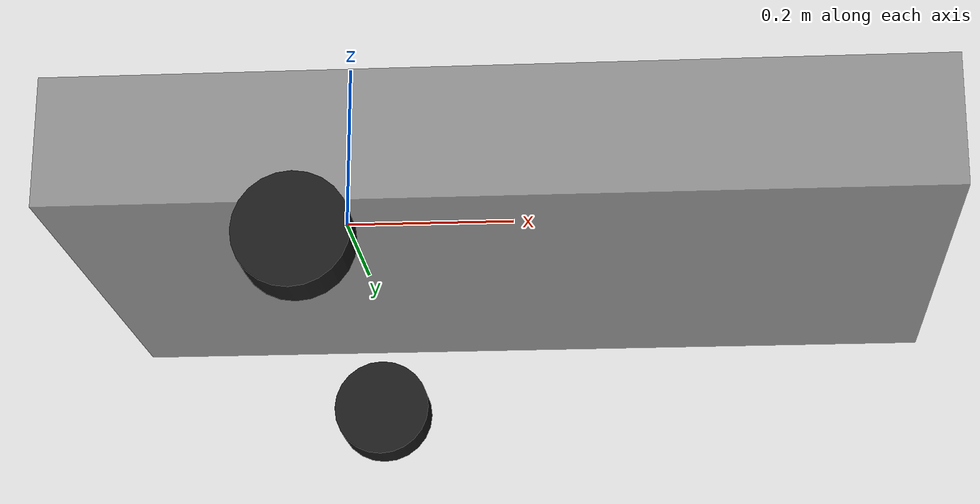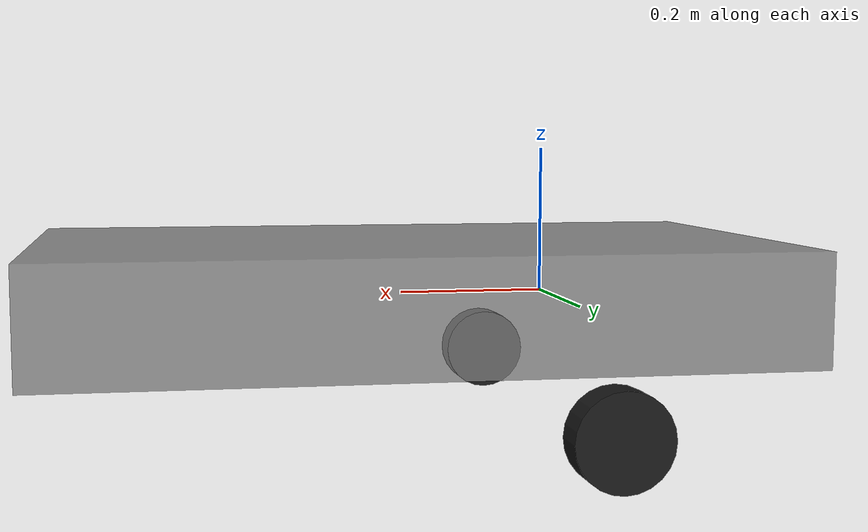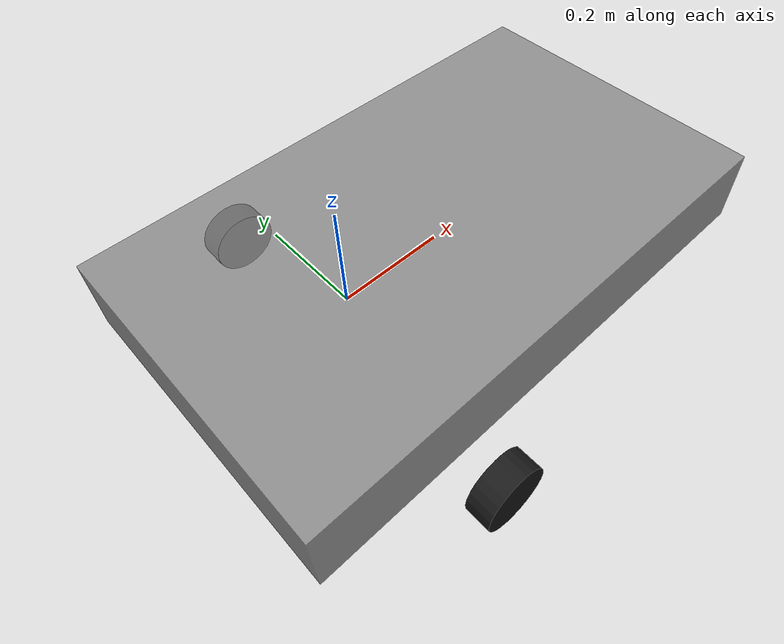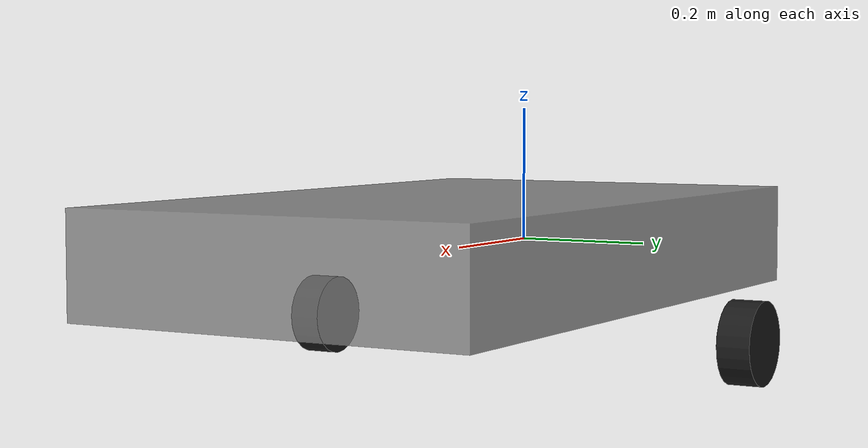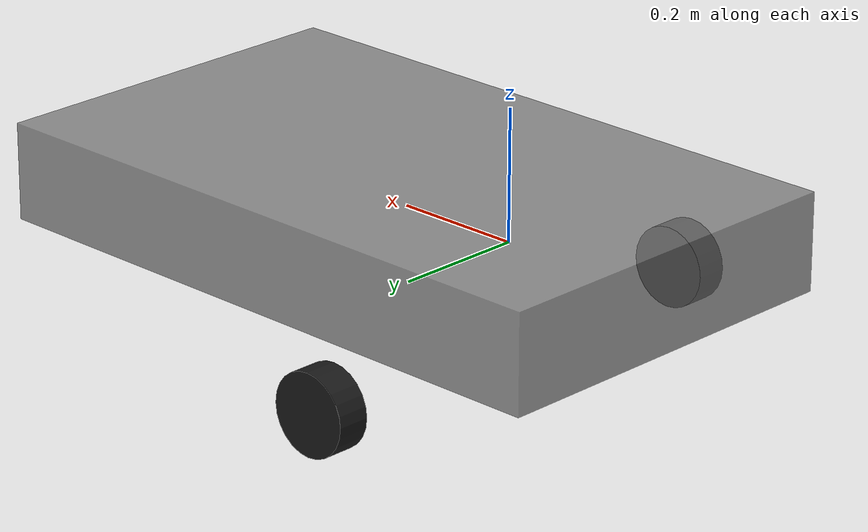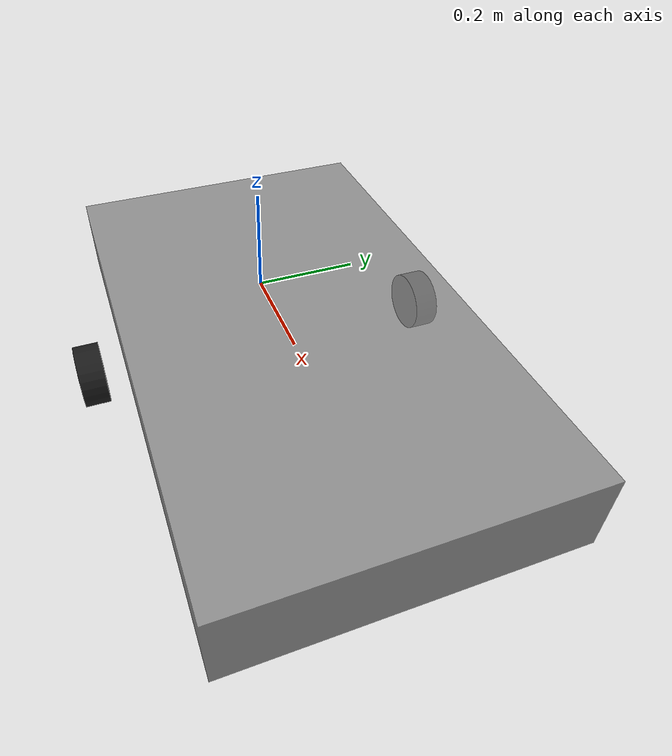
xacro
<?xml version="1.0"?>
<robot xmlns:xacro="http://www.ros.org/wiki/xacro" name="agv_ros2control">

  <xacro:arg name="use_mock_hardware" default="false"/>
  <xacro:arg name="can_interface" default="can0"/>
  <xacro:arg name="left_axis_id" default="0"/>
  <xacro:arg name="right_axis_id" default="1"/>
  <xacro:arg name="gear_ratio" default="10.0"/>
  <xacro:arg name="invert_left" default="true"/>
  <xacro:arg name="invert_right" default="false"/>
  <!-- Fault thresholds: consecutive cycles at the controller update rate
       before read()/write() report ERROR to controller_manager -->
  <xacro:arg name="max_send_failures" default="10"/>
  <xacro:arg name="encoder_timeout_cycles" default="100"/>

  <!-- Pull in the geometry already defined in agv_description -->
  <xacro:include filename="$(find agv_description)/urdf/agv_full.urdf.xacro"/>

  <ros2_control name="AgvDiffDriveHardware" type="system">
    <hardware>
      <xacro:if value="$(arg use_mock_hardware)">
        <plugin>mock_components/GenericSystem</plugin>
        <param name="calculate_dynamics">true</param>
      </xacro:if>
      <xacro:unless value="$(arg use_mock_hardware)">
        <plugin>agv_hw_interface/AgvDiffDriveSystem</plugin>
        <param name="can_interface">$(arg can_interface)</param>
        <param name="left_axis_id">$(arg left_axis_id)</param>
        <param name="right_axis_id">$(arg right_axis_id)</param>
        <param name="gear_ratio">$(arg gear_ratio)</param>
        <param name="invert_left">$(arg invert_left)</param>
        <param name="invert_right">$(arg invert_right)</param>
        <param name="max_send_failures">$(arg max_send_failures)</param>
        <param name="encoder_timeout_cycles">$(arg encoder_timeout_cycles)</param>
      </xacro:unless>
    </hardware>

    <joint name="left_wheel_joint">
      <command_interface name="velocity">
        <param name="min">-10.0</param>
        <param name="max">10.0</param>
      </command_interface>
      <state_interface name="position"/>
      <state_interface name="velocity"/>
    </joint>

    <joint name="right_wheel_joint">
      <command_interface name="velocity">
        <param name="min">-10.0</param>
        <param name="max">10.0</param>
      </command_interface>
      <state_interface name="position"/>
      <state_interface name="velocity"/>
    </joint>
  </ros2_control>

</robot>

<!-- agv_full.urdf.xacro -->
<robot xmlns:xacro="http://www.ros.org/wiki/xacro" name="agv">

  <!-- Measured parameters (defaults from robot_params.yaml, 2026-03-18) -->
  <xacro:arg name="wheel_radius" default="0.0625"/>
  <xacro:arg name="left_wheel_y" default="0.3675"/>
  <xacro:arg name="right_wheel_y" default="-0.3675"/>
  <xacro:arg name="wheel_z" default="-0.1375"/>
  <xacro:arg name="wheel_width" default="0.05"/>

  <!-- Include components -->
  <xacro:include filename="$(find agv_description)/urdf/agv_base.xacro"/>
  <xacro:include filename="$(find agv_description)/urdf/wheel.xacro"/>

  <!-- Left wheel -->
  <xacro:wheel
    name="left"
    x="0"
    y="$(arg left_wheel_y)"
    z="$(arg wheel_z)"
    radius="$(arg wheel_radius)"
    width="$(arg wheel_width)"/>

  <!-- Right wheel -->
  <xacro:wheel
    name="right"
    x="0"
    y="$(arg right_wheel_y)"
    z="$(arg wheel_z)"
    radius="$(arg wheel_radius)"
    width="$(arg wheel_width)"/>

</robot>

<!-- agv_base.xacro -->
<robot xmlns:xacro="http://www.ros.org/wiki/xacro">

  <!-- Chassis visual approximation -->
  <xacro:property name="chassis_length" value="1.0"/>
  <xacro:property name="chassis_width" value="0.6"/>
  <xacro:property name="chassis_height" value="0.15"/>

  <link name="base_link">
    <visual>
      <origin xyz="0.2 0 0" rpy="0 0 0"/>
      <geometry>
        <box size="${chassis_length} ${chassis_width} ${chassis_height}"/>
      </geometry>
      <material name="chassis_grey">
        <color rgba="0.5 0.5 0.5 0.8"/>
      </material>
    </visual>
    <collision>
      <origin xyz="0.2 0 0" rpy="0 0 0"/>
      <geometry>
        <box size="${chassis_length} ${chassis_width} ${chassis_height}"/>
      </geometry>
    </collision>
    <inertial>
      <mass value="30.0"/>
      <origin xyz="0.2 0 0"/>
      <inertia ixx="1.0" ixy="0" ixz="0" iyy="1.0" iyz="0" izz="1.0"/>
    </inertial>
  </link>

  <!-- Base footprint at ground level (for Nav2 costmap) -->
  <link name="base_footprint"/>

  <joint name="base_footprint_joint" type="fixed">
    <parent link="base_link"/>
    <child link="base_footprint"/>
    <origin xyz="0 0 -0.200" rpy="0 0 0"/>
  </joint>

</robot>

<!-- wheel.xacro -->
<robot xmlns:xacro="http://www.ros.org/wiki/xacro">

  <xacro:macro name="wheel" params="name x y z radius width">
    <link name="${name}_wheel">
      <visual>
        <geometry>
          <cylinder radius="${radius}" length="${width}"/>
        </geometry>
        <material name="wheel_black">
          <color rgba="0.1 0.1 0.1 1.0"/>
        </material>
      </visual>
      <collision>
        <geometry>
          <cylinder radius="${radius}" length="${width}"/>
        </geometry>
      </collision>
      <inertial>
        <mass value="2.0"/>
        <inertia ixx="0.002" ixy="0" ixz="0" iyy="0.002" iyz="0" izz="0.002"/>
      </inertial>
    </link>

    <joint name="${name}_wheel_joint" type="continuous">
      <parent link="base_link"/>
      <child link="${name}_wheel"/>
      <origin xyz="${x} ${y} ${z}" rpy="${-pi/2} 0 0"/>
      <axis xyz="0 0 1"/>
    </joint>
  </xacro:macro>

</robot>
